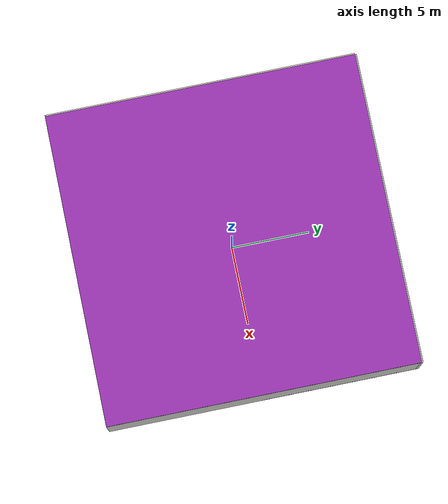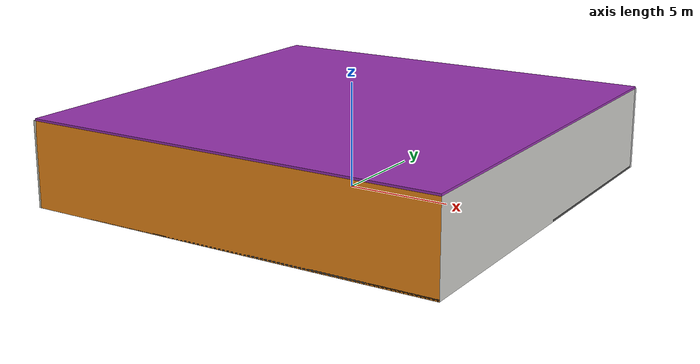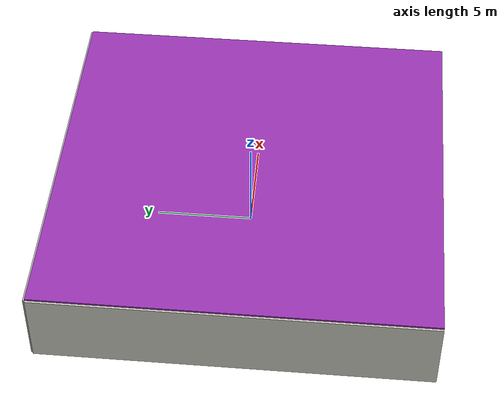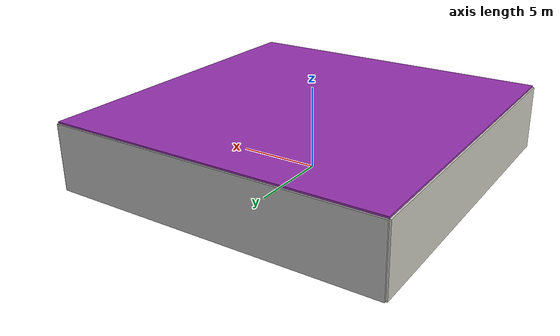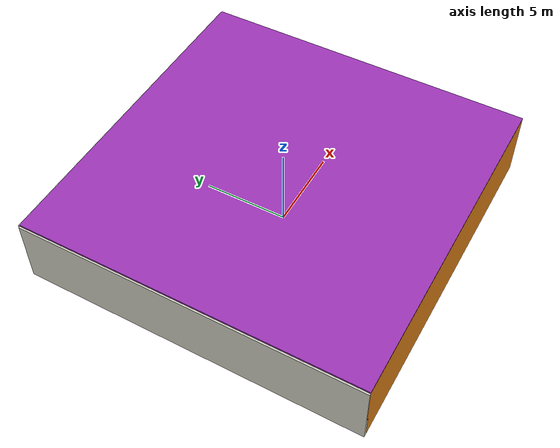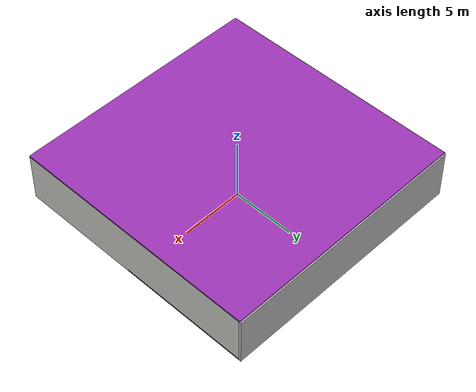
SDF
<sdf version="1.4">
 <world name="default">
  <physics type="ode">
   <max_step_size>0.001</max_step_size>
   <real_time_factor>1</real_time_factor>
   <real_time_update_rate>1000</real_time_update_rate>
   <gravity>0 0 -9.8</gravity>
  </physics>
  <scene><ambient>0.4 0.4 0.4 1</ambient><background>0.7 0.7 0.7 1</background><shadows>1</shadows></scene>
  <model name="Surrounding">
   <static>1</static>
   <link name="Ceiling">
    <collision name="Ceiling_Collision"><geometry><box><size>20 20 0.1</size></box></geometry></collision>
    <visual name="Ceiling_Visual">
     <geometry><box><size>20 20 0.1</size></box></geometry>
     <material>
      <script><uri>file://media/materials/scripts/gazebo.material</uri><name>Gazebo/PurpleGlow</name></script>
     </material>
    </visual>
    <pose>0 0 4.05 0 0 0</pose>
   </link>
   <link name="Wall_South">
    <collision name="Wall_South_Collision">
     <geometry><box><size>20 0 4</size></box></geometry>
     <pose>0 0 2 0 -0 0</pose>
    </collision>
    <visual name="Wall_South_Visual">
     <pose>0 0 2 0 -0 0</pose>
     <geometry><box><size>20 0 4</size></box></geometry>
     <material>
      <script><uri>file://media/materials/scripts/gazebo.material</uri><name>Gazebo/Orange</name></script>
     </material>
    </visual>
    <velocity_decay><linear>0</linear><angular>0</angular></velocity_decay>
    <pose>0 -10 0 0 -0 0</pose>
   </link>
   <link name="Wall_East">
    <collision name="Wall_21_Collision">
     <geometry><box><size>20 0 4</size></box></geometry>
     <pose>0 0 2 0 -0 0</pose>
    </collision>
    <visual name="Wall_21_Visual">
     <pose>0 0 2 0 -0 0</pose>
     <geometry><box><size>20 0 4</size></box></geometry>
     <material>
      <script><uri>file://media/materials/scripts/gazebo.material</uri><name>Gazebo/CeilingTiled</name></script>
     </material>
    </visual>
    <velocity_decay><linear>0</linear><angular>0</angular></velocity_decay>
    <pose>10 0 0 0 -0 1.5708</pose>
   </link>
   <link name="Wall_North">
    <collision name="Wall_22_Collision">
     <geometry><box><size>20 0.2 4</size></box></geometry>
     <pose>0 0 2 0 -0 0</pose>
    </collision>
    <visual name="Wall_22_Visual">
     <pose>0 0 2 0 -0 0</pose>
     <geometry><box><size>20 0.2 4</size></box></geometry>
     <material>
      <script><uri>file://media/materials/scripts/gazebo.material</uri><name>Gazebo/LightOff</name></script>
     </material>
    </visual>
    <velocity_decay><linear>0</linear><angular>0</angular></velocity_decay>
    <pose>0 10 0 0 -0 0</pose>
   </link>
   <link name="Wall_West">
    <collision name="Wall_23_Collision">
     <geometry><box><size>20 0.2 4</size></box></geometry>
     <pose>0 0 2 0 -0 0</pose>
    </collision>
    <visual name="Wall_23_Visual">
     <pose>0 0 2 0 -0 0</pose>
     <geometry><box><size>20 0.2 4</size></box></geometry>
     <material>
      <script><uri>file://media/materials/scripts/gazebo.material</uri><name>Gazebo/PaintedWall</name></script>
     </material>
    </visual>
    <velocity_decay><linear>0</linear><angular>0</angular></velocity_decay>
    <pose>-10 0 0 0 0 -1.5708</pose>
   </link>
   <link name="Ground_link">
    <collision name="collision">
     <pose>0 0 .05 0 -0 0</pose>
     <geometry><box><size>20 20 0.1</size></box></geometry>
    </collision>
    <visual name="visual">
     <pose>0 0 .05 0 -0 0</pose>
     <geometry><box><size>20 20 0.1</size></box></geometry>
     <material>
      <script><uri>file://media/materials/scripts/gazebo.material</uri><name>Gazebo/DarkGrey</name></script>
     </material>
    </visual>
   </link>
   <static>1</static>
  </model>
  <spherical_coordinates>
   <surface_model>EARTH_WGS84</surface_model>
   <latitude_deg>0</latitude_deg>
   <longitude_deg>0</longitude_deg>
   <elevation>0</elevation>
   <heading_deg>0</heading_deg>
  </spherical_coordinates>
  <light name="lightball_0" type="diffuse">
   <diffuse>0.8 0.8 0.8 1</diffuse>
   <specular>0.2 0.2 0.2 1</specular>
   <attenuation>
    <range>100</range>
    <constant>0.7</constant>
    <linear>0.01</linear>
    <quadratic>0.001</quadratic>
   </attenuation>
   <direction>-0.5 0.1 -0.9</direction>
   <pose>-7.8277859853 0.451894131252 0.829861972189 0 0 0</pose>
  </light>
  <light name="lightball_1" type="diffuse">
   <diffuse>0.8 0.8 0.8 1</diffuse>
   <specular>0.2 0.2 0.2 1</specular>
   <attenuation>
    <range>100</range>
    <constant>0.7</constant>
    <linear>0.01</linear>
    <quadratic>0.001</quadratic>
   </attenuation>
   <direction>-0.5 0.1 -0.9</direction>
   <pose>4.03993095464 8.33700482989 1.27672918999 0 0 0</pose>
  </light>
  <light name="lightball_2" type="diffuse">
   <diffuse>0.8 0.8 0.8 1</diffuse>
   <specular>0.2 0.2 0.2 1</specular>
   <attenuation>
    <range>100</range>
    <constant>0.7</constant>
    <linear>0.01</linear>
    <quadratic>0.001</quadratic>
   </attenuation>
   <direction>-0.5 0.1 -0.9</direction>
   <pose>-8.95851988196 2.38958434027 3.0581263757 0 0 0</pose>
  </light>
  <light name="lightball_3" type="diffuse">
   <diffuse>0.8 0.8 0.8 1</diffuse>
   <specular>0.2 0.2 0.2 1</specular>
   <attenuation>
    <range>100</range>
    <constant>0.7</constant>
    <linear>0.01</linear>
    <quadratic>0.001</quadratic>
   </attenuation>
   <direction>-0.5 0.1 -0.9</direction>
   <pose>8.67554025389 0.115752672473 2.14486603702 0 0 0</pose>
  </light>
  <light name="lightball_4" type="diffuse">
   <diffuse>0.8 0.8 0.8 1</diffuse>
   <specular>0.2 0.2 0.2 1</specular>
   <attenuation>
    <range>100</range>
    <constant>0.7</constant>
    <linear>0.01</linear>
    <quadratic>0.001</quadratic>
   </attenuation>
   <direction>-0.5 0.1 -0.9</direction>
   <pose>-8.26844420568 6.39979208029 1.87598494761 0 0 0</pose>
  </light>
  <light name="lightball_5" type="diffuse">
   <diffuse>0.8 0.8 0.8 1</diffuse>
   <specular>0.2 0.2 0.2 1</specular>
   <attenuation>
    <range>100</range>
    <constant>0.7</constant>
    <linear>0.01</linear>
    <quadratic>0.001</quadratic>
   </attenuation>
   <direction>-0.5 0.1 -0.9</direction>
   <pose>-2.96041516928 3.88819344723 2.6815202771 0 0 0</pose>
  </light>
  <light name="lightball_6" type="diffuse">
   <diffuse>0.8 0.8 0.8 1</diffuse>
   <specular>0.2 0.2 0.2 1</specular>
   <attenuation>
    <range>100</range>
    <constant>0.7</constant>
    <linear>0.01</linear>
    <quadratic>0.001</quadratic>
   </attenuation>
   <direction>-0.5 0.1 -0.9</direction>
   <pose>0.0779512888884 4.65926460796 2.08484385956 0 0 0</pose>
  </light>
  <light name="lightball_7" type="diffuse">
   <diffuse>0.8 0.8 0.8 1</diffuse>
   <specular>0.2 0.2 0.2 1</specular>
   <attenuation>
    <range>100</range>
    <constant>0.7</constant>
    <linear>0.01</linear>
    <quadratic>0.001</quadratic>
   </attenuation>
   <direction>-0.5 0.1 -0.9</direction>
   <pose>-9.88769886124 8.46237476525 2.64815920097 0 0 0</pose>
  </light>
  <light name="lightball_8" type="diffuse">
   <diffuse>0.8 0.8 0.8 1</diffuse>
   <specular>0.2 0.2 0.2 1</specular>
   <attenuation>
    <range>100</range>
    <constant>0.7</constant>
    <linear>0.01</linear>
    <quadratic>0.001</quadratic>
   </attenuation>
   <direction>-0.5 0.1 -0.9</direction>
   <pose>7.95985100482 7.89590803572 1.67511642606 0 0 0</pose>
  </light>
  <light name="lightball_9" type="diffuse">
   <diffuse>0.8 0.8 0.8 1</diffuse>
   <specular>0.2 0.2 0.2 1</specular>
   <attenuation>
    <range>100</range>
    <constant>0.7</constant>
    <linear>0.01</linear>
    <quadratic>0.001</quadratic>
   </attenuation>
   <direction>-0.5 0.1 -0.9</direction>
   <pose>9.84058203205 2.13644434982 3.09765898769 0 0 0</pose>
  </light>
  <light name="lightball_10" type="diffuse">
   <diffuse>0.8 0.8 0.8 1</diffuse>
   <specular>0.2 0.2 0.2 1</specular>
   <attenuation>
    <range>100</range>
    <constant>0.7</constant>
    <linear>0.01</linear>
    <quadratic>0.001</quadratic>
   </attenuation>
   <direction>-0.5 0.1 -0.9</direction>
   <pose>-6.52061696235 6.55406071657 3.37879195692 0 0 0</pose>
  </light>
  <light name="lightball_11" type="diffuse">
   <diffuse>0.8 0.8 0.8 1</diffuse>
   <specular>0.2 0.2 0.2 1</specular>
   <attenuation>
    <range>100</range>
    <constant>0.7</constant>
    <linear>0.01</linear>
    <quadratic>0.001</quadratic>
   </attenuation>
   <direction>-0.5 0.1 -0.9</direction>
   <pose>6.26121575661 7.80928796467 1.09721247982 0 0 0</pose>
  </light>
  <include><uri>model://cabinet</uri><pose>-7.95541741666 -4.50236957996 0 0 0 0.235443867021</pose></include>
  <include><uri>model://cabinet</uri><pose>-4.58761977998 8.25778709877 0 0 0 0.745519774881</pose></include>
  <include>
   <uri>model://robocup_3Dsim_goal</uri>
   <pose>-2.09148441431 -4.55966427509 0 0 0 0.0740927779967</pose>
  </include>
  <include><uri>model://cabinet</uri><pose>8.13957916865 7.26998125863 0 0 0 0.0307217156703</pose></include>
 </world>
</sdf>

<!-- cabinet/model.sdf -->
<sdf version="1.5">
  <model name="cabinet">
    <static>true</static>
    <link name="cabinet_bottom_plate">
      <inertial>
        <pose>0 0 -1 0 0 0</pose>
        <inertia>
          <ixx>2.050000</ixx>
          <ixy>0</ixy>
          <ixz>0</ixz>
          <iyy>2.050000</iyy>
          <iyz>0</iyz>
          <izz>2.050000</izz>
        </inertia>
        <mass>25.000000</mass>
      </inertial>
      <collision name="cabinet_bottom_plate_geom">
        <pose>0 0 0.010000 0 0 0</pose>
        <geometry>
          <box>
            <size>0.450000 0.450000 0.020000</size>
          </box>
        </geometry>
      </collision>
      <visual name="cabinet_bottom_plate_geom_visual">
        <pose>0 0 0.010000 0 0 0</pose>
        <geometry>
          <box>
            <size>0.450000 0.450000 0.020000</size>
          </box>
        </geometry>
        <material>
          <script>
            <uri>model://media/materials/scripts/gazebo.material</uri>
            <name>Gazebo/Wood</name>
          </script>
        </material>
      </visual>
      <collision name="cabinet_bottom_plate_geom_cabinet_back_plate">
        <pose>0.235000 0 0.510000 0 0 0</pose>
        <geometry>
          <box>
            <size>0.020000 0.450000 1.020000</size>
          </box>
        </geometry>
      </collision>
      <visual name="cabinet_bottom_plate_geom_cabinet_back_plate_visual">
        <pose>0.235000 0 0.510000 0 0 0</pose>
        <geometry>
          <box>
            <size>0.020000 0.450000 1.020000</size>
          </box>
        </geometry>
        <material>
          <script>
            <uri>model://media/materials/scripts/gazebo.material</uri>
            <name>Gazebo/Wood</name>
          </script>
        </material>
      </visual>
      <collision name="cabinet_bottom_plate_geom_cabinet_left_plate">
        <pose>0 0.235000 0.510000 0 0 0</pose>
        <geometry>
          <box>
            <size>0.450000 0.020000 1.020000</size>
          </box>
        </geometry>
      </collision>
      <visual name="cabinet_bottom_plate_geom_cabinet_left_plate_visual">
        <pose>0 0.235000 0.510000 0 0 0</pose>
        <geometry>
          <box>
            <size>0.450000 0.020000 1.020000</size>
          </box>
        </geometry>
        <material>
          <script>
            <uri>model://media/materials/scripts/gazebo.material</uri>
            <name>Gazebo/Wood</name>
          </script>
        </material>
      </visual>
      <collision name="cabinet_bottom_plate_geom_cabinet_middle_plate">
        <pose>0 0 0.510000 0 0 0</pose>
        <geometry>
          <box>
            <size>0.450000 0.450000 0.020000</size>
          </box>
        </geometry>
      </collision>
      <visual name="cabinet_bottom_plate_geom_cabinet_middle_plate_visual">
        <pose>0 0 0.510000 0 0 0</pose>
        <geometry>
          <box>
            <size>0.450000 0.450000 0.020000</size>
          </box>
        </geometry>
        <material>
          <script>
            <uri>model://media/materials/scripts/gazebo.material</uri>
            <name>Gazebo/Wood</name>
          </script>
        </material>
      </visual>
      <collision name="cabinet_bottom_plate_geom_cabinet_right_plate">
        <pose>0 -0.235000 0.510000 0 0 0</pose>
        <geometry>
          <box>
            <size>0.450000 0.020000 1.020000</size>
          </box>
        </geometry>
      </collision>
      <visual name="cabinet_bottom_plate_geom_cabinet_right_plate_visual">
        <pose>0 -0.235000 0.510000 0 0 0</pose>
        <geometry>
          <box>
            <size>0.450000 0.020000 1.020000</size>
          </box>
        </geometry>
        <material>
          <script>
            <uri>model://media/materials/scripts/gazebo.material</uri>
            <name>Gazebo/Wood</name>
          </script>
        </material>
      </visual>
      <collision name="cabinet_bottom_plate_geom_cabinet_top_plate">
        <pose>0 0 1.010000 0 0 0</pose>
        <geometry>
          <box>
            <size>0.450000 0.450000 0.020000</size>
          </box>
        </geometry>
      </collision>
      <visual name="cabinet_bottom_plate_geom_cabinet_top_plate_visual">
        <pose>0 0 1.010000 0 0 0</pose>
        <geometry>
          <box>
            <size>0.450000 0.450000 0.020000</size>
          </box>
        </geometry>
        <material>
          <script>
            <uri>model://media/materials/scripts/gazebo.material</uri>
            <name>Gazebo/Wood</name>
          </script>
        </material>
      </visual>
    </link>
  </model>
</sdf>

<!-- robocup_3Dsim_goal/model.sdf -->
<sdf version="1.5">
  <model name="robocup_3d_goal">
    <static>true</static>
    <link name="left_post">
      <pose>0 1.05 0.45 0 0 0</pose>
      <collision name="collision">
        <geometry>
          <cylinder>
            <radius>0.05</radius>
            <length>0.9</length>
          </cylinder>
        </geometry>
      </collision>
      <visual name="visual">
        <geometry>
          <cylinder>
            <radius>0.05</radius>
            <length>0.9</length>
          </cylinder>
        </geometry>
        <material>
          <script>
            <uri>file://media/materials/scripts/gazebo.material</uri>
            <name>Gazebo/ZincYellow</name>
          </script>
        </material>
      </visual>
    </link>
    <link name="left_support_horiz_lower">
      <pose>0.30 1.05 0.01 0 0 0</pose>
      <collision name="collision">
        <geometry>
          <box>
            <size>0.50 0.02 0.02</size>
          </box>
        </geometry>
      </collision>
      <visual name="visual">
        <geometry>
          <box>
            <size>0.50 0.02 0.02</size>
          </box>
        </geometry>
        <material>
          <script>
            <uri>file://media/materials/scripts/gazebo.material</uri>
            <name>Gazebo/White</name>
          </script>
        </material>
      </visual>
    </link>
    <link name="left_support_horiz_upper">
      <pose>0.30 1.05 0.79 0 0 0</pose>
      <collision name="collision">
        <geometry>
          <box>
            <size>0.50 0.02 0.02</size>
          </box>
        </geometry>
      </collision>
      <visual name="visual">
        <geometry>
          <box>
            <size>0.50 0.02 0.02</size>
          </box>
        </geometry>
        <material>
          <script>
            <uri>file://media/materials/scripts/gazebo.material</uri>
            <name>Gazebo/White</name>
          </script>
        </material>
      </visual>
    </link>
    <link name="left_support_vertical">
      <pose>0.56 1.05 0.4 0 1.5708 0</pose>
      <collision name="collision">
        <geometry>
          <box>
            <size>0.80 0.02 0.02</size>
          </box>
        </geometry>
      </collision>
      <visual name="visual">
        <geometry>
          <box>
            <size>0.80 0.02 0.02</size>
          </box>
        </geometry>
        <material>
          <script>
            <uri>file://media/materials/scripts/gazebo.material</uri>
            <name>Gazebo/White</name>
          </script>
        </material>
      </visual>
    </link>
    <link name="right_support_horiz_lower">
      <pose>0.30 -1.05 0.01 0 0 0</pose>
      <collision name="collision">
        <geometry>
          <box>
            <size>0.50 0.02 0.02</size>
          </box>
        </geometry>
      </collision>
      <visual name="visual">
        <geometry>
          <box>
            <size>0.50 0.02 0.02</size>
          </box>
        </geometry>
        <material>
          <script>
            <uri>file://media/materials/scripts/gazebo.material</uri>
            <name>Gazebo/White</name>
          </script>
        </material>
      </visual>
    </link>
    <link name="right_support_horiz_upper">
      <pose>0.30 -1.05 0.79 0 0 0</pose>
      <collision name="collision">
        <geometry>
          <box>
            <size>0.50 0.02 0.02</size>
          </box>
        </geometry>
      </collision>
      <visual name="visual">
        <geometry>
          <box>
            <size>0.50 0.02 0.02</size>
          </box>
        </geometry>
        <material>
          <script>
            <uri>file://media/materials/scripts/gazebo.material</uri>
            <name>Gazebo/White</name>
          </script>
        </material>
      </visual>
    </link>
    <link name="right_support_vertical">
      <pose>0.56 -1.05 0.4 0 1.5708 0</pose>
      <collision name="collision">
        <geometry>
          <box>
            <size>0.80 0.02 0.02</size>
          </box>
        </geometry>
      </collision>
      <visual name="visual">
        <geometry>
          <box>
            <size>0.80 0.02 0.02</size>
          </box>
        </geometry>
        <material>
          <script>
            <uri>file://media/materials/scripts/gazebo.material</uri>
            <name>Gazebo/White</name>
          </script>
        </material>
      </visual>
    </link>
    <link name="center_support_horiz_lower">
      <pose>0.56 0 0.01 0 1.5708 0</pose>
      <collision name="collision">
        <geometry>
          <box>
            <size>0.02 2.08 0.02</size>
          </box>
        </geometry>
      </collision>
      <visual name="visual">
        <geometry>
          <box>
            <size>0.02 2.08 0.02</size>
          </box>
        </geometry>
        <material>
          <script>
            <uri>file://media/materials/scripts/gazebo.material</uri>
            <name>Gazebo/White</name>
          </script>
        </material>
      </visual>
    </link>
    <link name="center_support_horiz_upper">
      <pose>0.56 0 0.79 0 1.5708 0</pose>
      <collision name="collision">
        <geometry>
          <box>
            <size>0.02 2.08 0.02</size>
          </box>
        </geometry>
      </collision>
      <visual name="visual">
        <geometry>
          <box>
            <size>0.02 2.08 0.02</size>
          </box>
        </geometry>
        <material>
          <script>
            <uri>file://media/materials/scripts/gazebo.material</uri>
            <name>Gazebo/White</name>
          </script>
        </material>
      </visual>
    </link>
    <link name="right_post">
      <pose>0 -1.05 0.45 0 0 0</pose>
      <collision name="collision">
        <geometry>
          <cylinder>
            <radius>0.05</radius>
            <length>0.9</length>
          </cylinder>
        </geometry>
      </collision>
      <visual name="visual">
        <geometry>
          <cylinder>
            <radius>0.05</radius>
            <length>0.9</length>
          </cylinder>
        </geometry>
        <material>
          <script>
            <uri>file://media/materials/scripts/gazebo.material</uri>
            <name>Gazebo/ZincYellow</name>
          </script>
        </material>
      </visual>
    </link>
    <link name="crossbar">
      <pose>0 0 0.85 1.57 1.57 0</pose>
      <collision name="collision">
        <geometry>
          <cylinder>
            <radius>0.05</radius>
            <length>2.0</length>
          </cylinder>
        </geometry>
      </collision>
      <visual name="visual">
        <geometry>
          <cylinder>
            <radius>0.05</radius>
            <length>2.0</length>
          </cylinder>
        </geometry>
        <material>
          <script>
            <uri>file://media/materials/scripts/gazebo.material</uri>
            <name>Gazebo/ZincYellow</name>
          </script>
        </material>
      </visual>
    </link>
    <link name="center_net">
      <pose>0.56 0 0.40 0 0 0</pose>
      <collision name="collision">
        <geometry>
          <box>
            <size>0.01 2.1 0.80</size>
          </box>
        </geometry>
      </collision>
      <visual name="visual">
        <geometry>
          <box>
            <size>0.01 2.1 0.80</size>
          </box>
        </geometry>
        <material>
          <script>
            <uri>model://../model_source/models/robocup09_spl_field/materials/scripts/</uri>
            <uri>model://../model_source/models/robocup09_spl_field/materials/textures/</uri>
            <name>RoboCup/Net</name>
          </script>
        </material>
      </visual>
    </link>
    <link name="left_net">
      <pose>0.30 1.05 0.40 0 0 0</pose>
      <collision name="collision">
        <geometry>
          <box>
            <size>0.50 0.01 0.76</size>
          </box>
        </geometry>
      </collision>
      <visual name="visual">
        <geometry>
          <box>
            <size>0.50 0.01 0.76</size>
          </box>
        </geometry>
        <material>
          <script>
            <uri>model://../model_source/models/robocup09_spl_field/materials/scripts/</uri>
            <uri>model://../model_source/models/robocup09_spl_field/materials/textures/</uri>
            <name>RoboCup/Net</name>
          </script>
        </material>
      </visual>
    </link>
    <link name="right_net">
      <pose>0.30 -1.05 0.40 0 0 0</pose>
      <collision name="collision">
        <geometry>
          <box>
            <size>0.50 0.01 0.76</size>
          </box>
        </geometry>
      </collision>
      <visual name="visual">
        <geometry>
          <box>
            <size>0.50 0.01 0.76</size>
          </box>
        </geometry>
        <material>
          <script>
            <uri>model://../model_source/models/robocup09_spl_field/materials/scripts/</uri>
            <uri>model://../model_source/models/robocup09_spl_field/materials/textures/</uri>
            <name>RoboCup/Net</name>
          </script>
        </material>
      </visual>
    </link>
  </model>
</sdf>
